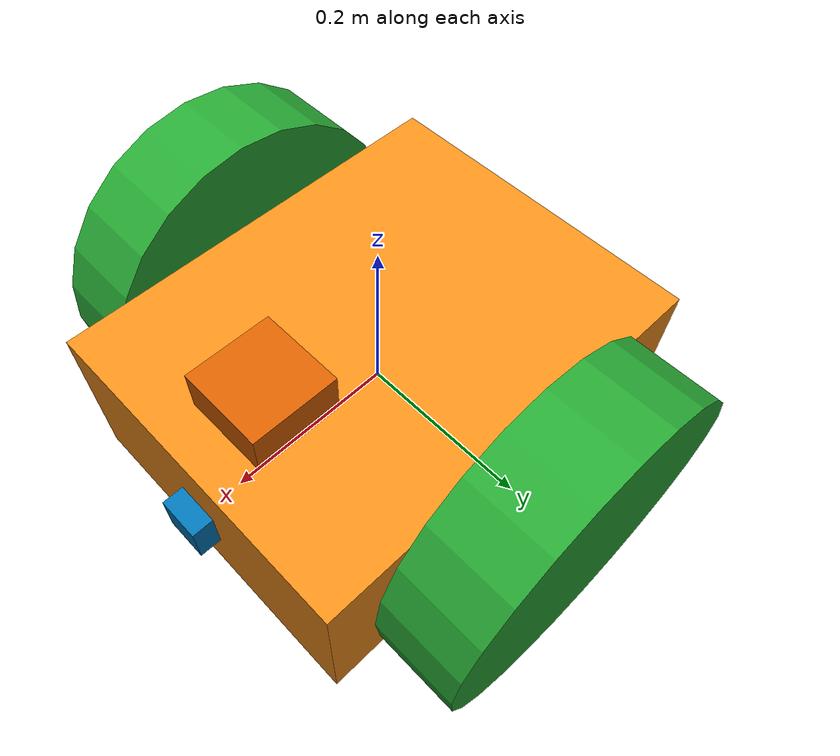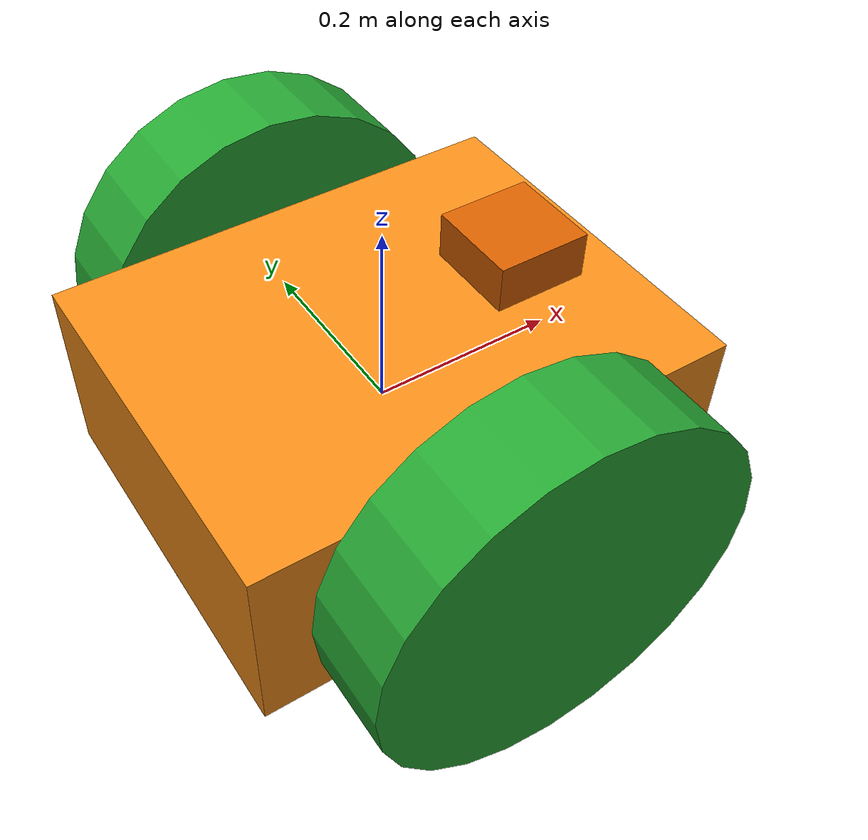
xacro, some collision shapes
<?xml version='1.0'?>

<robot name="my_robot" xmlns:xacro="http://www.ros.org/wiki/xacro">
<xacro:include filename="$(find my_robot)/urdf/my_robot.gazebo" />

<xacro:include filename="$(find my_robot)/urdf/materials.xacro" />

  <link name="robot_footprint"></link>

  <joint name="robot_footprint_joint" type="fixed">
    <origin xyz="0 0 0" rpy="0 0 0" />
    <parent link="robot_footprint"/>
    <child link="chassis" />
  </joint>

  <link name='chassis'>
    <pose>0 0 0.2 0 0 0</pose>

    <inertial>
      <mass value="15.0"/>
      <origin xyz="0.0 0 0" rpy=" 0 0 0"/>
      <inertia
          ixx="0.1" ixy="0" ixz="0"
          iyy="0.1" iyz="0"
          izz="0.1"
      />
    </inertial>

    <collision name='chassis_collision'>
      <origin xyz="0 0 0" rpy=" 0 0 0"/>
      <geometry>
        <box size=".5 .4 .2"/>
      </geometry>
    </collision>

    <visual name='chassis_visual'>
      <origin xyz="0 0 0" rpy=" 0 0 0"/>
      <geometry>
        <box size=".5 .4 .2"/>
      </geometry>
      <material name="Orange"/>
    </visual>

    <collision name='back_caster_collision'>
      <origin xyz="-0.15 0 -0.1" rpy=" 0 0 0"/>
      <geometry>
        <sphere radius="0.099"/>
      </geometry>
    </collision>

    <visual name='back_caster_visual'>
      <origin xyz="-0.15 0 -0.1" rpy=" 0 0 0"/>
      <geometry>
        <sphere radius="0.099"/>
      </geometry>
      <material name="Orange"/>
    </visual>

    <collision name='front_caster_collision'>
      <origin xyz="0.15 0 -0.1" rpy=" 0 0 0"/>
      <geometry>
        <sphere radius="0.099"/>
      </geometry>
    </collision>

    <visual name='front_caster_visual'>
      <origin xyz="0.15 0 -0.1" rpy=" 0 0 0"/>
      <geometry>
        <sphere radius="0.099"/>
      </geometry>
    </visual>

  </link>

  <joint type="continuous" name="left_wheel_hinge">
    <origin xyz="0 0.255 0" rpy="0 0 0"/>
    <child link="left_wheel"/>
    <parent link="chassis"/>
    <axis xyz="0 1 0" rpy="0 0 0"/>
    <limit effort="10000" velocity="1000"/>
    <dynamics damping="1.0" friction="1.0"/>
  </joint>

  <link name='left_wheel'>

    <inertial>
      <mass value="5.0"/>
      <origin xyz="0.0 0 0" rpy=" 0 1.5707 1.5707"/>
      <inertia
          ixx="0.1" ixy="0" ixz="0"
          iyy="0.1" iyz="0"
          izz="0.1"
      />
    </inertial>

    <collision name='left_wheel_collision'>
      <origin xyz="0 0 0" rpy=" 0 1.5707 1.5707"/>
      <geometry>
        <cylinder length="0.1" radius="0.2"/>
      </geometry>
    </collision>

    <visual name='left_wheel_visual'>
      <origin xyz="0 0 0" rpy=" 0 1.5707 1.5707"/>
      <geometry>
        <cylinder length="0.1" radius="0.2"/>
      </geometry>
    </visual>

   </link>

   <joint type="continuous" name="right_wheel_hinge">
    <origin xyz="0 -0.255 0" rpy="0 0 0"/>
    <child link="right_wheel"/>
    <parent link="chassis"/>
    <axis xyz="0 1 0" rpy="0 0 0"/>
    <limit effort="10000" velocity="1000"/>
    <dynamics damping="1.0" friction="1.0"/>
   </joint>

   <link name='right_wheel'>

    <inertial>
      <mass value="5.0"/>
      <origin xyz="0.0 0 0" rpy=" 0 1.5707 1.5707"/>
      <inertia
          ixx="0.1" ixy="0" ixz="0"
          iyy="0.1" iyz="0"
          izz="0.1"
      />
    </inertial>

    <collision name='right_wheel_collision'>
      <origin xyz="0 0 0" rpy=" 0 1.5707 1.5707"/>
      <geometry>
        <cylinder length="0.1" radius="0.2"/>
      </geometry>
    </collision>

    <visual name='right_wheel_visual'>
      <origin xyz="0 0 0" rpy=" 0 1.5707 1.5707"/>
      <geometry>
        <cylinder length="0.1" radius="0.2"/>
      </geometry>
    </visual>

   </link>

   <joint type="fixed" name="camera_joint">
    <origin xyz="0.25 0 0" rpy="0 0 0"/>
    <child link="camera"/>
    <parent link="chassis"/>
    <axis xyz="0 1 0" rpy="0 0 0"/>
   </joint>

   <link name='camera'>

    <inertial>
      <mass value="0.1"/>
      <origin xyz="0.0 0 0" rpy=" 0 0 0"/>
      <box_inertia m="0.1" x="0.05" y="0.05" z="0.05"/>
      <inertia
          ixx="0.000001" ixy="0" ixz="0"
          iyy="0.000001" iyz="0"
          izz="0.000001"
      />
    </inertial>

    <collision name='camera_collision'>
      <origin xyz="0 0 0" rpy=" 0 0 0"/>
      <geometry>
        <box size=".05 .05 .05"/>
      </geometry>
    </collision>

    <visual name='camera_visual'>
      <origin xyz="0 0 0" rpy=" 0 0 0"/>
      <geometry>
        <box size=".05 .05 .05"/>
      </geometry>
    </visual>

   </link>

   <joint type="fixed" name="hokuyo_joint">
    <origin xyz="0.15 0 0.1" rpy="0 0 0"/>
    <child link="hokuyo"/>
    <parent link="chassis"/>
    <axis xyz="0 1 0" rpy="0 0 0"/>
   </joint>

   <link name='hokuyo'>

    <inertial>
      <mass value="0.000001"/>
      <origin xyz="0.0 0 0" rpy=" 0 0 0"/>
      <inertia
          ixx="0.000001" ixy="0" ixz="0"
          iyy="0.000001" iyz="0"
          izz="0.000001"
      />
    </inertial>

    <collision name='hokuyo_collision'>
      <origin xyz="0 0 0" rpy=" 0 0 0"/>
      <geometry>
        <box size=".1 .1 .1"/>
      </geometry>
    </collision>

    <visual name='hokuyo_visual'>
      <origin xyz="0 0 0" rpy=" 0 0 0"/>
      <geometry>
        <mesh filename = "package://my_robot/meshes/hokuyo.dae"/>
      </geometry>
    </visual>

   </link>

</robot>

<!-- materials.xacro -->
<material name="Orange">
    <color rgba="${255/255} ${108/255} ${10/255} 1.0"/>
  </material>
